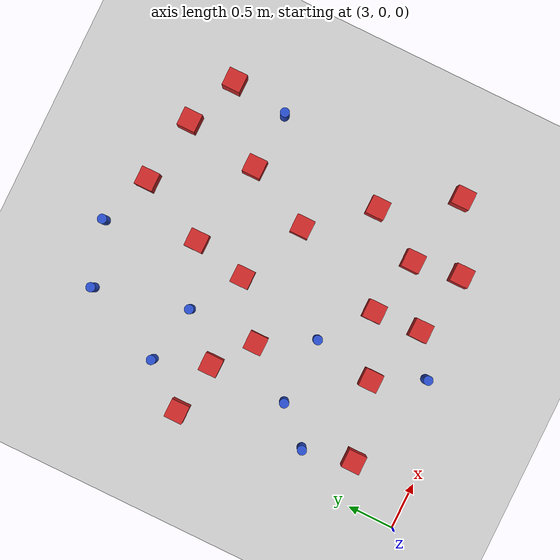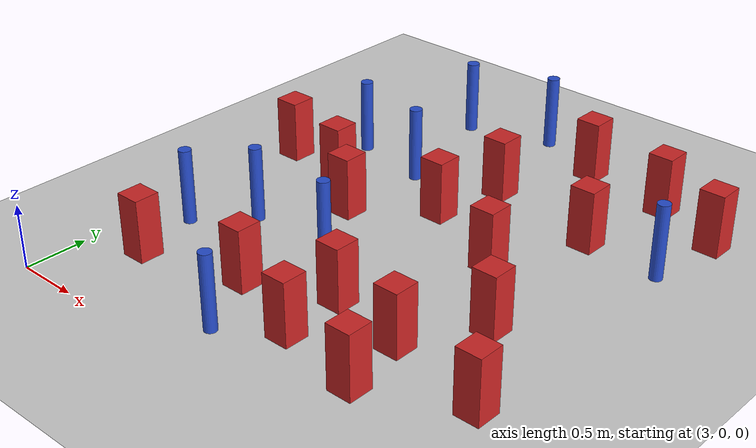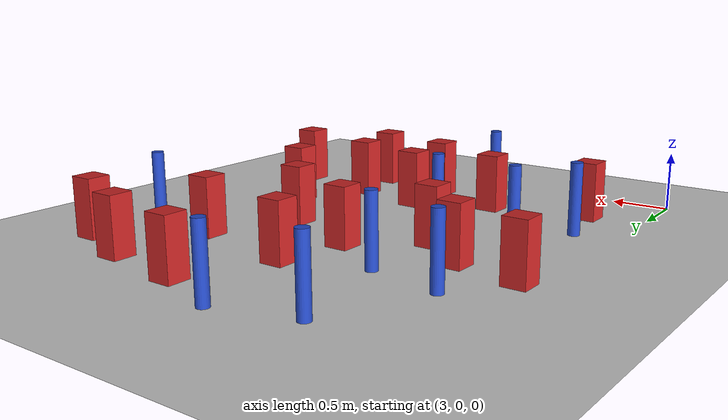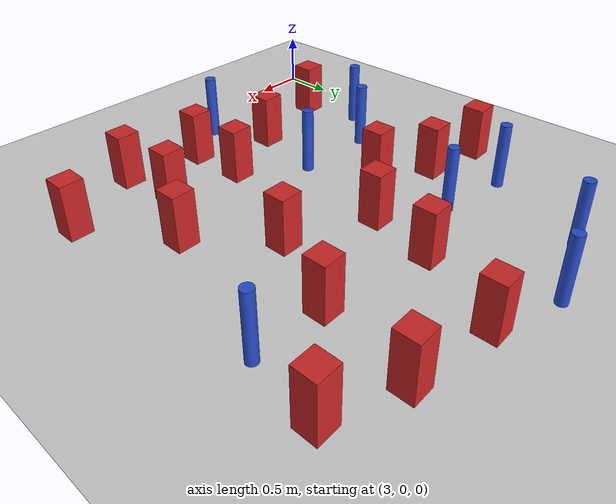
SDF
<sdf version="1.6">
 <world name="default">
  <model name="ground_plane">
   <static>1</static>
   <link name="link">
    <collision name="collision">
     <geometry><plane><normal>0 0 1</normal><size>100 100</size></plane></geometry>
     <surface><friction><ode><mu>100</mu><mu2>50</mu2></ode></friction></surface>
    </collision>
    <visual name="visual">
     <cast_shadows>0</cast_shadows>
     <geometry><plane><normal>0 0 1</normal><size>100 100</size></plane></geometry>
     <material>
      <ambient>1.0 1.0 1.0 1.0</ambient>
      <diffuse>0.8 0.8 0.8 1.0</diffuse>
      <specular>0.01 0.01 0.01 1.000000</specular>
     </material>
    </visual>
   </link>
  </model>
  <model name="square_post_obstacle14">
   <static>true</static>
   <pose>5.66487133897 0.518670508902 8.22691968438e-08 7.2212513382e-06 -7.54495500217e-07 2.29674213826e-05</pose>
   <link name="link">
    <pose>0 0 0.25 0 -0 0</pose>
    <inertial>
     <mass>100</mass>
     <inertia>
      <ixx>0.166667</ixx>
      <ixy>0</ixy>
      <ixz>0</ixz>
      <iyy>0.166667</iyy>
      <iyz>0</iyz>
      <izz>0.166667</izz>
     </inertia>
    </inertial>
    <collision name="collision"><geometry><box><size>.2 .2 .5</size></box></geometry></collision>
    <visual name="visual">
     <geometry><box><size>.2 .2 .5</size></box></geometry>
     <material>
      <script><name>Gazebo/Red</name><uri>file://media/materials/scripts/gazebo.material</uri></script>
     </material>
    </visual>
   </link>
  </model>
  <model name="pole_obstacle9">
   <static>true</static>
   <pose>4.54602831759 0.370276990639 2.88873142074e-08 -9.90536689981e-09 4.60219948986e-07 -1.20965994962e-07</pose>
   <link name="link">
    <pose>0 0 0.3 0 -0 0</pose>
    <inertial>
     <mass>1</mass>
     <inertia><ixx>0.145833</ixx><ixy>0</ixy><ixz>0</ixz><iyy>0.145833</iyy><iyz>0</iyz><izz>0.125</izz></inertia>
    </inertial>
    <collision name="collision">
     <geometry><cylinder><radius>0.05</radius><length>.6</length></cylinder></geometry>
    </collision>
    <visual name="visual">
     <geometry><cylinder><radius>0.05</radius><length>.6</length></cylinder></geometry>
     <material>
      <script><name>Gazebo/Blue</name><uri>file://media/materials/scripts/gazebo.material</uri></script>
     </material>
    </visual>
   </link>
  </model>
  <model name="square_post_obstacle31">
   <static>true</static>
   <pose>4.94219889889 1.16377534675 8.22691968438e-08 7.2212513382e-06 -7.54495500217e-07 2.29674213826e-05</pose>
   <link name="link">
    <pose>0 0 0.25 0 -0 0</pose>
    <inertial>
     <mass>100</mass>
     <inertia>
      <ixx>0.166667</ixx>
      <ixy>0</ixy>
      <ixz>0</ixz>
      <iyy>0.166667</iyy>
      <iyz>0</iyz>
      <izz>0.166667</izz>
     </inertia>
    </inertial>
    <collision name="collision"><geometry><box><size>.2 .2 .5</size></box></geometry></collision>
    <visual name="visual">
     <geometry><box><size>.2 .2 .5</size></box></geometry>
     <material>
      <script><name>Gazebo/Red</name><uri>file://media/materials/scripts/gazebo.material</uri></script>
     </material>
    </visual>
   </link>
  </model>
  <model name="pole_obstacle25">
   <static>true</static>
   <pose>4.42375611299 1.56296586128 2.88873142074e-08 -9.90536689445e-09 4.60219948999e-07 -1.20965994956e-07</pose>
   <link name="link">
    <pose>0 0 0.3 0 -0 0</pose>
    <inertial>
     <mass>1</mass>
     <inertia><ixx>0.145833</ixx><ixy>0</ixy><ixz>0</ixz><iyy>0.145833</iyy><iyz>0</iyz><izz>0.125</izz></inertia>
    </inertial>
    <collision name="collision">
     <geometry><cylinder><radius>0.05</radius><length>.6</length></cylinder></geometry>
    </collision>
    <visual name="visual">
     <geometry><cylinder><radius>0.05</radius><length>.6</length></cylinder></geometry>
     <material>
      <script><name>Gazebo/Blue</name><uri>file://media/materials/scripts/gazebo.material</uri></script>
     </material>
    </visual>
   </link>
  </model>
  <model name="square_post_obstacle32">
   <static>true</static>
   <pose>5.1428946223 3.85929947308 8.22691968438e-08 7.2212513382e-06 -7.54495500217e-07 2.29674213826e-05</pose>
   <link name="link">
    <pose>0 0 0.25 0 -0 0</pose>
    <inertial>
     <mass>100</mass>
     <inertia>
      <ixx>0.166667</ixx>
      <ixy>0</ixy>
      <ixz>0</ixz>
      <iyy>0.166667</iyy>
      <iyz>0</iyz>
      <izz>0.166667</izz>
     </inertia>
    </inertial>
    <collision name="collision"><geometry><box><size>.2 .2 .5</size></box></geometry></collision>
    <visual name="visual">
     <geometry><box><size>.2 .2 .5</size></box></geometry>
     <material>
      <script><name>Gazebo/Red</name><uri>file://media/materials/scripts/gazebo.material</uri></script>
     </material>
    </visual>
   </link>
  </model>
  <model name="pole_obstacle32">
   <static>true</static>
   <pose>4.57245997009 4.08333504648 2.88873142074e-08 -9.90536690842e-09 4.60219948965e-07 -1.20965994976e-07</pose>
   <link name="link">
    <pose>0 0 0.3 0 -0 0</pose>
    <inertial>
     <mass>1</mass>
     <inertia><ixx>0.145833</ixx><ixy>0</ixy><ixz>0</ixz><iyy>0.145833</iyy><iyz>0</iyz><izz>0.125</izz></inertia>
    </inertial>
    <collision name="collision">
     <geometry><cylinder><radius>0.05</radius><length>.6</length></cylinder></geometry>
    </collision>
    <visual name="visual">
     <geometry><cylinder><radius>0.05</radius><length>.6</length></cylinder></geometry>
     <material>
      <script><name>Gazebo/Blue</name><uri>file://media/materials/scripts/gazebo.material</uri></script>
     </material>
    </visual>
   </link>
  </model>
  <model name="square_post_obstacle37">
   <static>true</static>
   <pose>5.74137818954 2.92356763334 8.22691968438e-08 7.2212513382e-06 -7.54495500217e-07 2.29674213826e-05</pose>
   <link name="link">
    <pose>0 0 0.25 0 -0 0</pose>
    <inertial>
     <mass>100</mass>
     <inertia>
      <ixx>0.166667</ixx>
      <ixy>0</ixy>
      <ixz>0</ixz>
      <iyy>0.166667</iyy>
      <iyz>0</iyz>
      <izz>0.166667</izz>
     </inertia>
    </inertial>
    <collision name="collision"><geometry><box><size>.2 .2 .5</size></box></geometry></collision>
    <visual name="visual">
     <geometry><box><size>.2 .2 .5</size></box></geometry>
     <material>
      <script><name>Gazebo/Red</name><uri>file://media/materials/scripts/gazebo.material</uri></script>
     </material>
    </visual>
   </link>
  </model>
  <model name="square_post_obstacle51">
   <static>true</static>
   <pose>3.71321894691 2.43603956643 8.22691968438e-08 7.2212513382e-06 -7.54495500217e-07 2.29674213826e-05</pose>
   <link name="link">
    <pose>0 0 0.25 0 -0 0</pose>
    <inertial>
     <mass>100</mass>
     <inertia>
      <ixx>0.166667</ixx>
      <ixy>0</ixy>
      <ixz>0</ixz>
      <iyy>0.166667</iyy>
      <iyz>0</iyz>
      <izz>0.166667</izz>
     </inertia>
    </inertial>
    <collision name="collision"><geometry><box><size>.2 .2 .5</size></box></geometry></collision>
    <visual name="visual">
     <geometry><box><size>.2 .2 .5</size></box></geometry>
     <material>
      <script><name>Gazebo/Red</name><uri>file://media/materials/scripts/gazebo.material</uri></script>
     </material>
    </visual>
   </link>
  </model>
  <model name="square_post_obstacle52">
   <static>true</static>
   <pose>3.4635204265 0.680936921465 8.22691968438e-08 7.2212513382e-06 -7.54495500217e-07 2.29674213826e-05</pose>
   <link name="link">
    <pose>0 0 0.25 0 -0 0</pose>
    <inertial>
     <mass>100</mass>
     <inertia>
      <ixx>0.166667</ixx>
      <ixy>0</ixy>
      <ixz>0</ixz>
      <iyy>0.166667</iyy>
      <iyz>0</iyz>
      <izz>0.166667</izz>
     </inertia>
    </inertial>
    <collision name="collision"><geometry><box><size>.2 .2 .5</size></box></geometry></collision>
    <visual name="visual">
     <geometry><box><size>.2 .2 .5</size></box></geometry>
     <material>
      <script><name>Gazebo/Red</name><uri>file://media/materials/scripts/gazebo.material</uri></script>
     </material>
    </visual>
   </link>
  </model>
  <model name="square_post_obstacle54">
   <static>true</static>
   <pose>3.13257688299 2.54080047916 8.22691968438e-08 7.2212513382e-06 -7.54495500217e-07 2.29674213826e-05</pose>
   <link name="link">
    <pose>0 0 0.25 0 -0 0</pose>
    <inertial>
     <mass>100</mass>
     <inertia>
      <ixx>0.166667</ixx>
      <ixy>0</ixy>
      <ixz>0</ixz>
      <iyy>0.166667</iyy>
      <iyz>0</iyz>
      <izz>0.166667</izz>
     </inertia>
    </inertial>
    <collision name="collision"><geometry><box><size>.2 .2 .5</size></box></geometry></collision>
    <visual name="visual">
     <geometry><box><size>.2 .2 .5</size></box></geometry>
     <material>
      <script><name>Gazebo/Red</name><uri>file://media/materials/scripts/gazebo.material</uri></script>
     </material>
    </visual>
   </link>
  </model>
  <model name="pole_obstacle73">
   <static>true</static>
   <pose>3.34233274552 1.21751272224 2.88873142074e-08 -9.90536689395e-09 4.60219949e-07 -1.20965994953e-07</pose>
   <link name="link">
    <pose>0 0 0.3 0 -0 0</pose>
    <inertial>
     <mass>1</mass>
     <inertia><ixx>0.145833</ixx><ixy>0</ixy><ixz>0</ixz><iyy>0.145833</iyy><iyz>0</iyz><izz>0.125</izz></inertia>
    </inertial>
    <collision name="collision">
     <geometry><cylinder><radius>0.05</radius><length>.6</length></cylinder></geometry>
    </collision>
    <visual name="visual">
     <geometry><cylinder><radius>0.05</radius><length>.6</length></cylinder></geometry>
     <material>
      <script><name>Gazebo/Blue</name><uri>file://media/materials/scripts/gazebo.material</uri></script>
     </material>
    </visual>
   </link>
  </model>
  <model name="pole_obstacle86">
   <static>true</static>
   <pose>3.69305729281 1.59004671607 2.88873142074e-08 -9.90536689395e-09 4.60219949e-07 -1.20965994953e-07</pose>
   <link name="link">
    <pose>0 0 0.3 0 -0 0</pose>
    <inertial>
     <mass>1</mass>
     <inertia><ixx>0.145833</ixx><ixy>0</ixy><ixz>0</ixz><iyy>0.145833</iyy><iyz>0</iyz><izz>0.125</izz></inertia>
    </inertial>
    <collision name="collision">
     <geometry><cylinder><radius>0.05</radius><length>.6</length></cylinder></geometry>
    </collision>
    <visual name="visual">
     <geometry><cylinder><radius>0.05</radius><length>.6</length></cylinder></geometry>
     <material>
      <script><name>Gazebo/Blue</name><uri>file://media/materials/scripts/gazebo.material</uri></script>
     </material>
    </visual>
   </link>
  </model>
  <model name="square_post_obstacle82">
   <static>true</static>
   <pose>5.4012256387 2.21309586892 8.22691968438e-08 7.2212513382e-06 -7.54495500217e-07 2.29674213826e-05</pose>
   <link name="link">
    <pose>0 0 0.25 0 -0 0</pose>
    <inertial>
     <mass>100</mass>
     <inertia>
      <ixx>0.166667</ixx>
      <ixy>0</ixy>
      <ixz>0</ixz>
      <iyy>0.166667</iyy>
      <iyz>0</iyz>
      <izz>0.166667</izz>
     </inertia>
    </inertial>
    <collision name="collision"><geometry><box><size>.2 .2 .5</size></box></geometry></collision>
    <visual name="visual">
     <geometry><box><size>.2 .2 .5</size></box></geometry>
     <material>
      <script><name>Gazebo/Red</name><uri>file://media/materials/scripts/gazebo.material</uri></script>
     </material>
    </visual>
   </link>
  </model>
  <model name="square_post_obstacle97">
   <static>true</static>
   <pose>4.6678711514 2.53903928232 8.22691968438e-08 7.2212513382e-06 -7.54495500217e-07 2.29674213826e-05</pose>
   <link name="link">
    <pose>0 0 0.25 0 -0 0</pose>
    <inertial>
     <mass>100</mass>
     <inertia>
      <ixx>0.166667</ixx>
      <ixy>0</ixy>
      <ixz>0</ixz>
      <iyy>0.166667</iyy>
      <iyz>0</iyz>
      <izz>0.166667</izz>
     </inertia>
    </inertial>
    <collision name="collision"><geometry><box><size>.2 .2 .5</size></box></geometry></collision>
    <visual name="visual">
     <geometry><box><size>.2 .2 .5</size></box></geometry>
     <material>
      <script><name>Gazebo/Red</name><uri>file://media/materials/scripts/gazebo.material</uri></script>
     </material>
    </visual>
   </link>
  </model>
  <model name="square_post_obstacle108">
   <static>true</static>
   <pose>6.44473476472 3.494466569 8.22691968438e-08 7.2212513382e-06 -7.54495500217e-07 2.29674213826e-05</pose>
   <link name="link">
    <pose>0 0 0.25 0 -0 0</pose>
    <inertial>
     <mass>100</mass>
     <inertia>
      <ixx>0.166667</ixx>
      <ixy>0</ixy>
      <ixz>0</ixz>
      <iyy>0.166667</iyy>
      <iyz>0</iyz>
      <izz>0.166667</izz>
     </inertia>
    </inertial>
    <collision name="collision"><geometry><box><size>.2 .2 .5</size></box></geometry></collision>
    <visual name="visual">
     <geometry><box><size>.2 .2 .5</size></box></geometry>
     <material>
      <script><name>Gazebo/Red</name><uri>file://media/materials/scripts/gazebo.material</uri></script>
     </material>
    </visual>
   </link>
  </model>
  <model name="pole_obstacle120">
   <static>true</static>
   <pose>3.89422844097 3.88358116214 2.88873142074e-08 -9.90536690232e-09 4.6021994898e-07 -1.20965994968e-07</pose>
   <link name="link">
    <pose>0 0 0.3 0 -0 0</pose>
    <inertial>
     <mass>1</mass>
     <inertia><ixx>0.145833</ixx><ixy>0</ixy><ixz>0</ixz><iyy>0.145833</iyy><iyz>0</iyz><izz>0.125</izz></inertia>
    </inertial>
    <collision name="collision">
     <geometry><cylinder><radius>0.05</radius><length>.6</length></cylinder></geometry>
    </collision>
    <visual name="visual">
     <geometry><cylinder><radius>0.05</radius><length>.6</length></cylinder></geometry>
     <material>
      <script><name>Gazebo/Blue</name><uri>file://media/materials/scripts/gazebo.material</uri></script>
     </material>
    </visual>
   </link>
  </model>
  <model name="square_post_obstacle115">
   <static>true</static>
   <pose>5.58071994504 1.03320469162 8.22691968438e-08 7.2212513382e-06 -7.54495500217e-07 2.29674213826e-05</pose>
   <link name="link">
    <pose>0 0 0.25 0 -0 0</pose>
    <inertial>
     <mass>100</mass>
     <inertia>
      <ixx>0.166667</ixx>
      <ixy>0</ixy>
      <ixz>0</ixz>
      <iyy>0.166667</iyy>
      <iyz>0</iyz>
      <izz>0.166667</izz>
     </inertia>
    </inertial>
    <collision name="collision"><geometry><box><size>.2 .2 .5</size></box></geometry></collision>
    <visual name="visual">
     <geometry><box><size>.2 .2 .5</size></box></geometry>
     <material>
      <script><name>Gazebo/Red</name><uri>file://media/materials/scripts/gazebo.material</uri></script>
     </material>
    </visual>
   </link>
  </model>
  <model name="pole_obstacle141">
   <static>true</static>
   <pose>4.13117142508 2.88281039151 2.88873142074e-08 -9.90536690245e-09 4.6021994898e-07 -1.20965994966e-07</pose>
   <link name="link">
    <pose>0 0 0.3 0 -0 0</pose>
    <inertial>
     <mass>1</mass>
     <inertia><ixx>0.145833</ixx><ixy>0</ixy><ixz>0</ixz><iyy>0.145833</iyy><iyz>0</iyz><izz>0.125</izz></inertia>
    </inertial>
    <collision name="collision">
     <geometry><cylinder><radius>0.05</radius><length>.6</length></cylinder></geometry>
    </collision>
    <visual name="visual">
     <geometry><cylinder><radius>0.05</radius><length>.6</length></cylinder></geometry>
     <material>
      <script><name>Gazebo/Blue</name><uri>file://media/materials/scripts/gazebo.material</uri></script>
     </material>
    </visual>
   </link>
  </model>
  <model name="pole_obstacle149">
   <static>true</static>
   <pose>6.36225177841 2.88321310868 2.88873142074e-08 -9.90536690245e-09 4.6021994898e-07 -1.20965994966e-07</pose>
   <link name="link">
    <pose>0 0 0.3 0 -0 0</pose>
    <inertial>
     <mass>1</mass>
     <inertia><ixx>0.145833</ixx><ixy>0</ixy><ixz>0</ixz><iyy>0.145833</iyy><iyz>0</iyz><izz>0.125</izz></inertia>
    </inertial>
    <collision name="collision">
     <geometry><cylinder><radius>0.05</radius><length>.6</length></cylinder></geometry>
    </collision>
    <visual name="visual">
     <geometry><cylinder><radius>0.05</radius><length>.6</length></cylinder></geometry>
     <material>
      <script><name>Gazebo/Blue</name><uri>file://media/materials/scripts/gazebo.material</uri></script>
     </material>
    </visual>
   </link>
  </model>
  <model name="pole_obstacle175">
   <static>true</static>
   <pose>3.49614564618 3.00527513936 2.88873142074e-08 -9.90536690232e-09 4.6021994898e-07 -1.20965994968e-07</pose>
   <link name="link">
    <pose>0 0 0.3 0 -0 0</pose>
    <inertial>
     <mass>1</mass>
     <inertia><ixx>0.145833</ixx><ixy>0</ixy><ixz>0</ixz><iyy>0.145833</iyy><iyz>0</iyz><izz>0.125</izz></inertia>
    </inertial>
    <collision name="collision">
     <geometry><cylinder><radius>0.05</radius><length>.6</length></cylinder></geometry>
    </collision>
    <visual name="visual">
     <geometry><cylinder><radius>0.05</radius><length>.6</length></cylinder></geometry>
     <material>
      <script><name>Gazebo/Blue</name><uri>file://media/materials/scripts/gazebo.material</uri></script>
     </material>
    </visual>
   </link>
  </model>
  <model name="square_post_obstacle169">
   <static>true</static>
   <pose>5.91389027983 1.5980434141 8.22691968438e-08 7.2212513382e-06 -7.54495500217e-07 2.29674213826e-05</pose>
   <link name="link">
    <pose>0 0 0.25 0 -0 0</pose>
    <inertial>
     <mass>100</mass>
     <inertia>
      <ixx>0.166667</ixx>
      <ixy>0</ixy>
      <ixz>0</ixz>
      <iyy>0.166667</iyy>
      <iyz>0</iyz>
      <izz>0.166667</izz>
     </inertia>
    </inertial>
    <collision name="collision"><geometry><box><size>.2 .2 .5</size></box></geometry></collision>
    <visual name="visual">
     <geometry><box><size>.2 .2 .5</size></box></geometry>
     <material>
      <script><name>Gazebo/Red</name><uri>file://media/materials/scripts/gazebo.material</uri></script>
     </material>
    </visual>
   </link>
  </model>
  <model name="square_post_obstacle173">
   <static>true</static>
   <pose>4.97301242358 0.649123205907 8.22691968438e-08 7.2212513382e-06 -7.54495500217e-07 2.29674213826e-05</pose>
   <link name="link">
    <pose>0 0 0.25 0 -0 0</pose>
    <inertial>
     <mass>100</mass>
     <inertia>
      <ixx>0.166667</ixx>
      <ixy>0</ixy>
      <ixz>0</ixz>
      <iyy>0.166667</iyy>
      <iyz>0</iyz>
      <izz>0.166667</izz>
     </inertia>
    </inertial>
    <collision name="collision"><geometry><box><size>.2 .2 .5</size></box></geometry></collision>
    <visual name="visual">
     <geometry><box><size>.2 .2 .5</size></box></geometry>
     <material>
      <script><name>Gazebo/Red</name><uri>file://media/materials/scripts/gazebo.material</uri></script>
     </material>
    </visual>
   </link>
  </model>
  <model name="square_post_obstacle174">
   <static>true</static>
   <pose>6.38917351504 0.855998190962 8.22691968438e-08 7.2212513382e-06 -7.54495500217e-07 2.29674213826e-05</pose>
   <link name="link">
    <pose>0 0 0.25 0 -0 0</pose>
    <inertial>
     <mass>100</mass>
     <inertia>
      <ixx>0.166667</ixx>
      <ixy>0</ixy>
      <ixz>0</ixz>
      <iyy>0.166667</iyy>
      <iyz>0</iyz>
      <izz>0.166667</izz>
     </inertia>
    </inertial>
    <collision name="collision"><geometry><box><size>.2 .2 .5</size></box></geometry></collision>
    <visual name="visual">
     <geometry><box><size>.2 .2 .5</size></box></geometry>
     <material>
      <script><name>Gazebo/Red</name><uri>file://media/materials/scripts/gazebo.material</uri></script>
     </material>
    </visual>
   </link>
  </model>
  <model name="square_post_obstacle186">
   <static>true</static>
   <pose>4.79651025795 3.12495239108 8.22691968438e-08 7.2212513382e-06 -7.54495500217e-07 2.29674213826e-05</pose>
   <link name="link">
    <pose>0 0 0.25 0 -0 0</pose>
    <inertial>
     <mass>100</mass>
     <inertia>
      <ixx>0.166667</ixx>
      <ixy>0</ixy>
      <ixz>0</ixz>
      <iyy>0.166667</iyy>
      <iyz>0</iyz>
      <izz>0.166667</izz>
     </inertia>
    </inertial>
    <collision name="collision"><geometry><box><size>.2 .2 .5</size></box></geometry></collision>
    <visual name="visual">
     <geometry><box><size>.2 .2 .5</size></box></geometry>
     <material>
      <script><name>Gazebo/Red</name><uri>file://media/materials/scripts/gazebo.material</uri></script>
     </material>
    </visual>
   </link>
  </model>
  <model name="square_post_obstacle187">
   <static>true</static>
   <pose>4.28968624145 0.888665757653 8.22691968438e-08 7.2212513382e-06 -7.54495500217e-07 2.29674213826e-05</pose>
   <link name="link">
    <pose>0 0 0.25 0 -0 0</pose>
    <inertial>
     <mass>100</mass>
     <inertia>
      <ixx>0.166667</ixx>
      <ixy>0</ixy>
      <ixz>0</ixz>
      <iyy>0.166667</iyy>
      <iyz>0</iyz>
      <izz>0.166667</izz>
     </inertia>
    </inertial>
    <collision name="collision"><geometry><box><size>.2 .2 .5</size></box></geometry></collision>
    <visual name="visual">
     <geometry><box><size>.2 .2 .5</size></box></geometry>
     <material>
      <script><name>Gazebo/Red</name><uri>file://media/materials/scripts/gazebo.material</uri></script>
     </material>
    </visual>
   </link>
  </model>
  <model name="square_post_obstacle208">
   <static>true</static>
   <pose>5.87698298615 3.73117212576 8.22691968438e-08 7.2212513382e-06 -7.54495500217e-07 2.29674213826e-05</pose>
   <link name="link">
    <pose>0 0 0.25 0 -0 0</pose>
    <inertial>
     <mass>100</mass>
     <inertia>
      <ixx>0.166667</ixx>
      <ixy>0</ixy>
      <ixz>0</ixz>
      <iyy>0.166667</iyy>
      <iyz>0</iyz>
      <izz>0.166667</izz>
     </inertia>
    </inertial>
    <collision name="collision"><geometry><box><size>.2 .2 .5</size></box></geometry></collision>
    <visual name="visual">
     <geometry><box><size>.2 .2 .5</size></box></geometry>
     <material>
      <script><name>Gazebo/Red</name><uri>file://media/materials/scripts/gazebo.material</uri></script>
     </material>
    </visual>
   </link>
  </model>
  <model name="square_post_obstacle225">
   <static>true</static>
   <pose>4.11452003262 2.12079996466 8.22691968438e-08 7.2212513382e-06 -7.54495500217e-07 2.29674213826e-05</pose>
   <link name="link">
    <pose>0 0 0.25 0 -0 0</pose>
    <inertial>
     <mass>100</mass>
     <inertia>
      <ixx>0.166667</ixx>
      <ixy>0</ixy>
      <ixz>0</ixz>
      <iyy>0.166667</iyy>
      <iyz>0</iyz>
      <izz>0.166667</izz>
     </inertia>
    </inertial>
    <collision name="collision"><geometry><box><size>.2 .2 .5</size></box></geometry></collision>
    <visual name="visual">
     <geometry><box><size>.2 .2 .5</size></box></geometry>
     <material>
      <script><name>Gazebo/Red</name><uri>file://media/materials/scripts/gazebo.material</uri></script>
     </material>
    </visual>
   </link>
  </model>
 </world>
</sdf>
